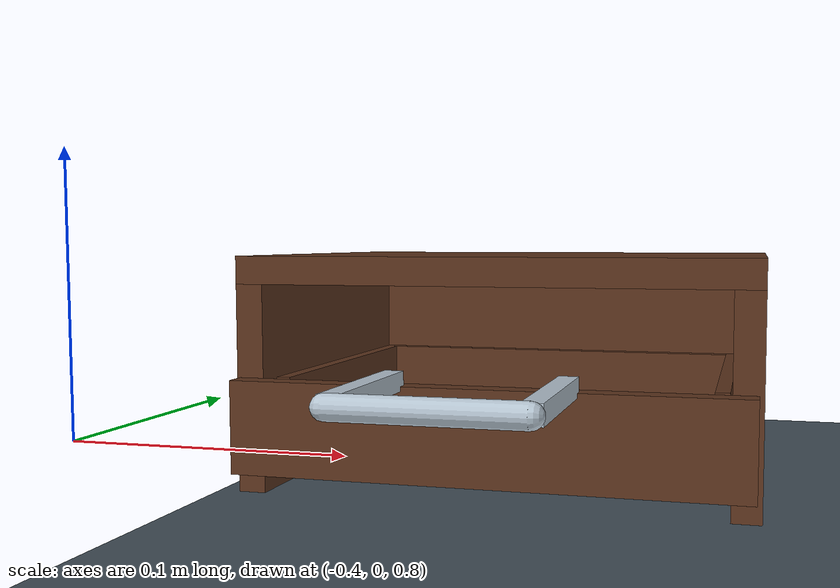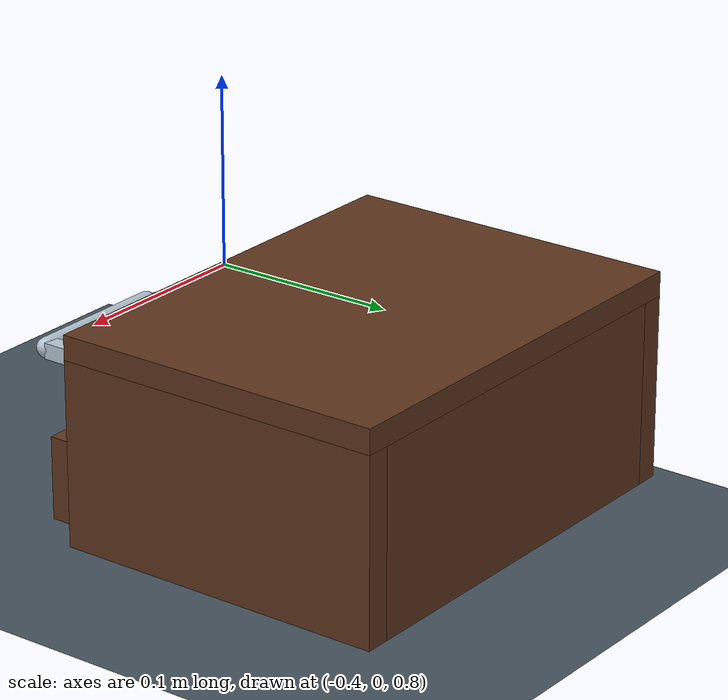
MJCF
<mujoco model="duet2_drawer">
  <compiler angle="radian" autolimits="true" />
  <option timestep=".005" integrator="implicitfast" cone="elliptic" iterations="30" />
  <asset>
    <material name="base_motor_holder_so101_v1_material" rgba="1 0.82 0.12 1" />
    <material name="base_so101_v2_material" rgba="1 0.82 0.12 1" />
    <material name="sts3215_03a_v1_material" rgba="0.1 0.1 0.1 1" />
    <material name="waveshare_mounting_plate_so101_v2_material" rgba="1 0.82 0.12 1" />
    <material name="motor_holder_so101_base_v1_material" rgba="1 0.82 0.12 1" />
    <material name="rotation_pitch_so101_v1_material" rgba="1 0.82 0.12 1" />
    <material name="upper_arm_so101_v1_material" rgba="1 0.82 0.12 1" />
    <material name="under_arm_so101_v1_material" rgba="1 0.82 0.12 1" />
    <material name="motor_holder_so101_wrist_v1_material" rgba="1 0.82 0.12 1" />
    <material name="sts3215_03a_no_horn_v1_material" rgba="0.1 0.1 0.1 1.0" />
    <material name="wrist_roll_pitch_so101_v2_material" rgba="1 0.82 0.12 1" />
    <material name="wrist_roll_follower_so101_v1_material" rgba="1 0.82 0.12 1" />
    <material name="moving_jaw_so101_v1_material" rgba="1 0.82 0.12 1" />
    <texture name="sky" type="skybox" builtin="gradient" rgb1="0.15 0.21 0.29" rgb2="0.04 0.07 0.12" width="512" height="3072" />
    <texture name="floor_tex" type="2d" builtin="checker" width="512" height="512" rgb1="0.18 0.22 0.28" rgb2="0.20 0.24 0.30" />
    <material name="floor_mat" texture="floor_tex" texrepeat="8 8" reflectance="0.05" />
    <material name="table_mat" rgba=".69 .53 .37 1" specular="0.25" shininess="0.3" />
    <material name="edge_mat" rgba="0.07 0.12 0.17 1" specular="0.45" />
    <material name="tube_mat" rgba="0.71 0.88 0.94 0.78" specular="0.6" shininess="0.8" />
    <material name="ceramic" rgba=".95 .95 .90 1" specular=".3" shininess=".65" />
    <material name="plate_blue" rgba=".33 .51 .76 1" specular=".35" shininess=".65" />
    <material name="plate_gold" rgba=".81 .56 .28 1" specular=".35" shininess=".65" />
    <material name="mug_teal" rgba=".06 .53 .49 1" specular=".4" shininess=".65" />
    <material name="clear_glass" rgba=".66 .87 .92 .30" specular=".75" shininess=".65" />
    <material name="glass_rim" rgba=".62 .84 .89 .8" specular=".6" shininess=".65" />
    <material name="amber_glass" rgba=".55 .32 .13 .78" specular=".6" shininess=".65" />
    <material name="bottle_label" rgba=".96 .91 .72 1" specular=".1" shininess=".65" />
    <material name="steel" rgba=".72 .78 .83 1" specular=".85" shininess=".65" />
    <material name="drawer_wood" rgba=".37 .21 .12 1" specular=".2" shininess=".65" />
    <material name="drawer_lining" rgba=".20 .28 .27 1" specular=".1" shininess=".65" />
  </asset>
  <worldbody>
    <light pos="0 -.3 2" dir="0 0 -1" />
    <geom name="inspection_floor" type="plane" size=".4 .4 .05" pos="0 0 0.76" rgba=".27 .32 .36 1" />
    <body name="cutlery_cabinet" pos="-0.28 0.18 0.76">
      <geom name="cabinet_side_-1" type="box" size="0.006 0.083 0.045" pos="-0.104 0 0.045" mass="0" friction=".8 .005 .0001" condim="4" solref=".012 1" material="drawer_wood" />
      <geom name="cabinet_side_1" type="box" size="0.006 0.083 0.045" pos="0.104 0 0.045" mass="0" friction=".8 .005 .0001" condim="4" solref=".012 1" material="drawer_wood" />
      <geom name="cabinet_roof" type="box" size="0.11 0.083 0.006" pos="0 0 0.096" mass="0" friction=".8 .005 .0001" condim="4" solref=".012 1" material="drawer_wood" />
      <geom name="cabinet_back" type="box" size="0.098 0.005 0.045" pos="0 0.078 0.045" mass="0" friction=".8 .005 .0001" condim="4" solref=".012 1" material="drawer_wood" />
    </body>
    <body name="cutlery_drawer" pos="-0.28 0.18 0.76">
      <joint name="drawer_slide" type="slide" axis="0 -1 0" range="0 0.12" damping="2" frictionloss=".15" armature=".01" />
      <inertial pos="0 0 .025" mass=".18" diaginertia=".00045 .0006 .0009" />
      <geom name="drawer_floor" type="box" size="0.094 0.072 0.004" pos="0 0 0.015" mass="0" friction=".8 .005 .0001" condim="4" solref=".012 1" material="drawer_lining" />
      <geom name="drawer_side_-1" type="box" size="0.003 0.072 0.015" pos="-0.094 0 0.034" mass="0" friction=".8 .005 .0001" condim="4" solref=".012 1" material="drawer_wood" />
      <geom name="drawer_side_1" type="box" size="0.003 0.072 0.015" pos="0.094 0 0.034" mass="0" friction=".8 .005 .0001" condim="4" solref=".012 1" material="drawer_wood" />
      <geom name="drawer_back" type="box" size="0.094 0.003 0.015" pos="0 0.069 0.034" mass="0" friction=".8 .005 .0001" condim="4" solref=".012 1" material="drawer_wood" />
      <geom name="drawer_front" type="box" size="0.108 0.005 0.02" pos="0 -0.089 0.03" mass="0" friction=".8 .005 .0001" condim="4" solref=".012 1" material="drawer_wood" />
      <geom name="drawer_handle_post_-0.036" type="box" size="0.004 0.034 0.004" pos="-0.036 -0.124 0.052" mass="0" friction=".8 .005 .0001" condim="4" solref=".012 1" material="steel" />
      <geom name="drawer_handle_post_0.036" type="box" size="0.004 0.034 0.004" pos="0.036 -0.124 0.052" mass="0" friction=".8 .005 .0001" condim="4" solref=".012 1" material="steel" />
      <geom name="drawer_handle" type="capsule" size="0.005 0.036" pos="0 -0.16 0.052" mass="0" friction=".8 .005 .0001" condim="4" solref=".012 1" material="steel" quat="0.70710678 0 0.70710678 0" />
      <geom name="cutlery_support_-0.047" type="box" size="0.078 0.003 0.005" pos="0 -0.047 0.024" mass="0" friction=".8 .005 .0001" condim="4" solref=".012 1" material="drawer_lining" />
      <geom name="cutlery_support_0.006" type="box" size="0.078 0.003 0.005" pos="0 0.006 0.024" mass="0" friction=".8 .005 .0001" condim="4" solref=".012 1" material="drawer_lining" />
      <site name="drawer_handle_grasp" pos="0 -.160 .052" size=".002" group="4" />
    </body>
  </worldbody>
</mujoco>
